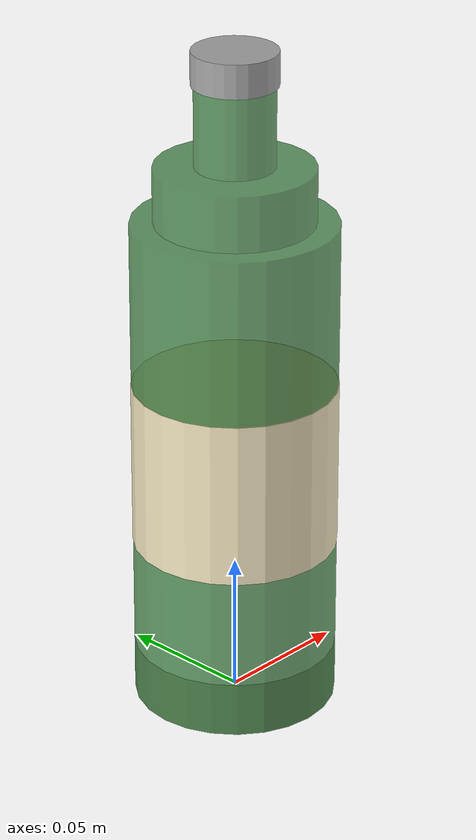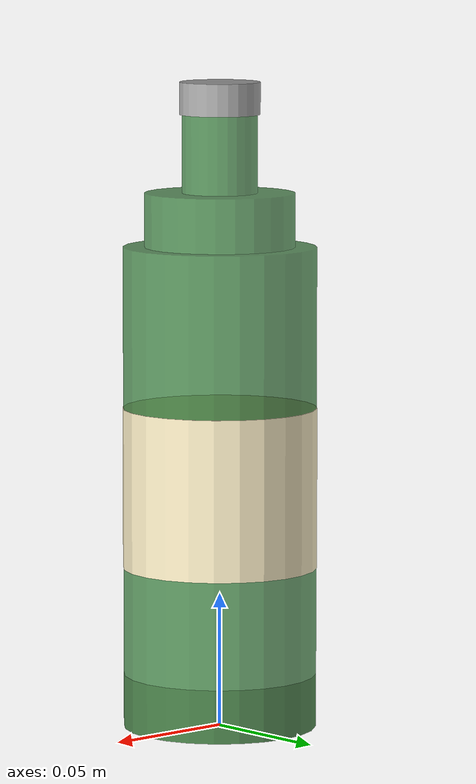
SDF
<?xml version="1.0"?>
<sdf version="1.8">
  <model name="glass_bottle">
    <static>false</static>
    <link name="link">

      <!-- Inertial: ~0.4 kg glass bottle -->
      <inertial>
        <mass>0.4</mass>
        <pose>0 0 0.11 0 0 0</pose>
        <inertia>
          <ixx>0.0018</ixx>
          <iyy>0.0018</iyy>
          <izz>0.00018</izz>
          <ixy>0</ixy>
          <ixz>0</ixz>
          <iyz>0</iyz>
        </inertia>
      </inertial>

      <!-- Simplified single-cylinder collision for stable physics -->
      <collision name="collision">
        <pose>0 0 0.11 0 0 0</pose>
        <geometry>
          <cylinder>
            <radius>0.036</radius>
            <length>0.22</length>
          </cylinder>
        </geometry>
        <surface>
          <friction>
            <ode>
              <mu>0.6</mu>
              <mu2>0.6</mu2>
            </ode>
          </friction>
          <contact>
            <ode>
              <kp>1e6</kp>
              <kd>10</kd>
            </ode>
          </contact>
        </surface>
      </collision>

      <!-- Bottle base (thicker glass at bottom) -->
      <visual name="base">
        <pose>0 0 0.01 0 0 0</pose>
        <geometry>
          <cylinder>
            <radius>0.036</radius>
            <length>0.02</length>
          </cylinder>
        </geometry>
        <material>
          <ambient>0.15 0.35 0.15 0.85</ambient>
          <diffuse>0.2 0.45 0.2 0.85</diffuse>
          <specular>0.6 0.6 0.6 1</specular>
        </material>
      </visual>

      <!-- Main body (green glass) -->
      <visual name="body">
        <pose>0 0 0.10 0 0 0</pose>
        <geometry>
          <cylinder>
            <radius>0.036</radius>
            <length>0.16</length>
          </cylinder>
        </geometry>
        <material>
          <ambient>0.15 0.4 0.18 0.75</ambient>
          <diffuse>0.2 0.5 0.22 0.75</diffuse>
          <specular>0.7 0.7 0.7 1</specular>
        </material>
      </visual>

      <!-- Shoulder (tapered transition to neck) -->
      <visual name="shoulder">
        <pose>0 0 0.19 0 0 0</pose>
        <geometry>
          <cylinder>
            <radius>0.028</radius>
            <length>0.02</length>
          </cylinder>
        </geometry>
        <material>
          <ambient>0.15 0.4 0.18 0.75</ambient>
          <diffuse>0.2 0.5 0.22 0.75</diffuse>
          <specular>0.7 0.7 0.7 1</specular>
        </material>
      </visual>

      <!-- Neck -->
      <visual name="neck">
        <pose>0 0 0.215 0 0 0</pose>
        <geometry>
          <cylinder>
            <radius>0.014</radius>
            <length>0.03</length>
          </cylinder>
        </geometry>
        <material>
          <ambient>0.15 0.4 0.18 0.75</ambient>
          <diffuse>0.2 0.5 0.22 0.75</diffuse>
          <specular>0.7 0.7 0.7 1</specular>
        </material>
      </visual>

      <!-- Cap (metal/foil) -->
      <visual name="cap">
        <pose>0 0 0.235 0 0 0</pose>
        <geometry>
          <cylinder>
            <radius>0.015</radius>
            <length>0.012</length>
          </cylinder>
        </geometry>
        <material>
          <ambient>0.5 0.5 0.5 1</ambient>
          <diffuse>0.65 0.65 0.65 1</diffuse>
          <specular>0.9 0.9 0.9 1</specular>
        </material>
      </visual>

      <!-- Label (paper wrap around body) -->
      <visual name="label">
        <pose>0 0 0.09 0 0 0</pose>
        <geometry>
          <cylinder>
            <radius>0.0362</radius>
            <length>0.06</length>
          </cylinder>
        </geometry>
        <material>
          <ambient>0.85 0.82 0.7 1</ambient>
          <diffuse>0.95 0.9 0.75 1</diffuse>
        </material>
      </visual>

    </link>
  </model>
</sdf>
